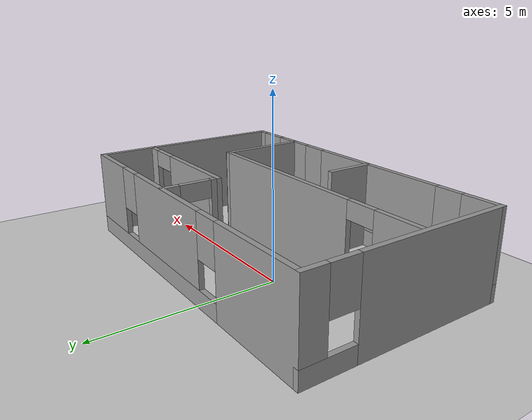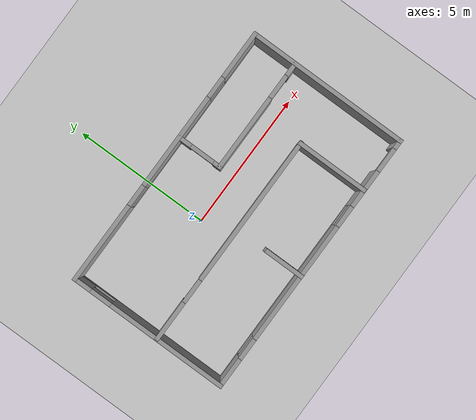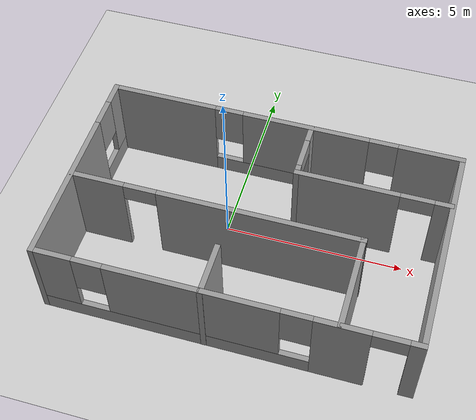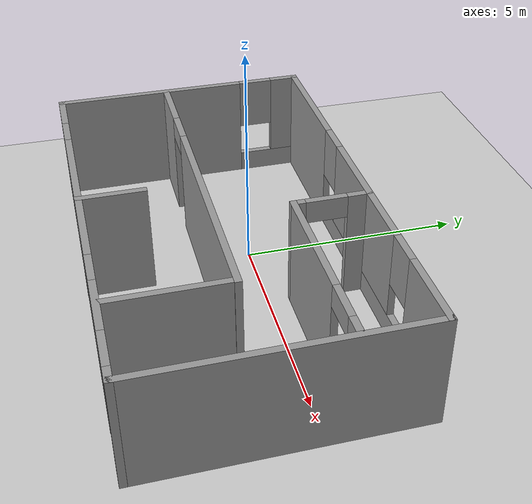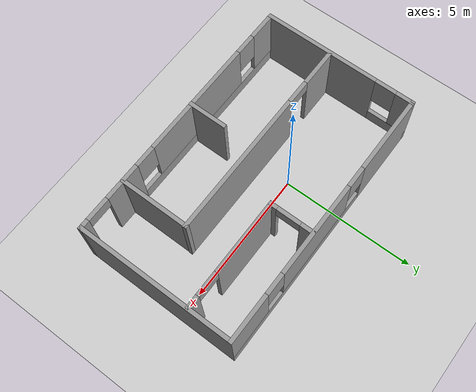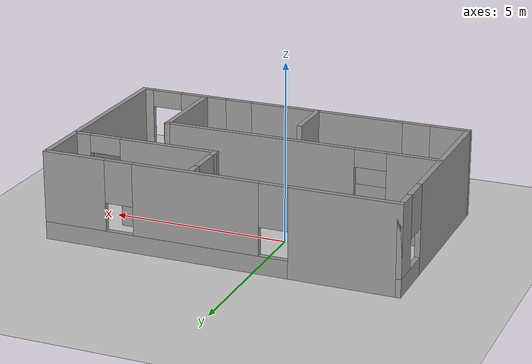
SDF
<sdf version="1.7">
 <world name="default">
  <light name="sun" type="directional">
   <pose>0 0 10 0 -0 0</pose>
   <diffuse>0.8 0.8 0.8 1</diffuse>
   <specular>0.2 0.2 0.2 1</specular>
   <attenuation>
    <range>1000</range>
    <constant>0.9</constant>
    <linear>0.01</linear>
    <quadratic>0.001</quadratic>
   </attenuation>
   <direction>-0.5 0.1 -0.9</direction>
   <spot><inner_angle>0</inner_angle><outer_angle>0</outer_angle><falloff>0</falloff></spot>
  </light>
  <model name="ground_plane">
   <static>1</static>
   <link name="link">
    <collision name="collision">
     <geometry><plane><normal>0 0 1</normal><size>100 100</size></plane></geometry>
     <surface>
      <contact><collide_bitmask>65535</collide_bitmask></contact>
      <friction><ode><mu>100</mu><mu2>50</mu2></ode></friction>
     </surface>
    </collision>
    <visual name="visual">
     <cast_shadows>0</cast_shadows>
     <geometry><plane><normal>0 0 1</normal><size>100 100</size></plane></geometry>
     <material>
      <script><uri>file://media/materials/scripts/gazebo.material</uri><name>Gazebo/Grey</name></script>
     </material>
    </visual>
   </link>
  </model>
  <gravity>0 0 -9.8</gravity>
  <magnetic_field>6e-06 2.3e-05 -4.2e-05</magnetic_field>
  <atmosphere type="adiabatic"/>
  <physics type="ode">
   <max_step_size>0.001</max_step_size>
   <real_time_factor>1</real_time_factor>
   <real_time_update_rate>1000</real_time_update_rate>
  </physics>
  <scene><ambient>0.4 0.4 0.4 1</ambient><background>0.7 0.7 0.7 1</background><shadows>1</shadows></scene>
  <audio><device>default</device></audio>
  <spherical_coordinates>
   <surface_model>EARTH_WGS84</surface_model>
   <latitude_deg>0</latitude_deg>
   <longitude_deg>0</longitude_deg>
   <elevation>0</elevation>
   <heading_deg>0</heading_deg>
  </spherical_coordinates>
  <model name="room">
   <pose>1.01499 -0.761918 0 0 -0 0</pose>
   <link name="Wall_10">
    <collision name="Wall_10_Collision">
     <geometry><box><size>2.68133 0.15 2.5</size></box></geometry>
     <pose>0 0 1.25 0 -0 0</pose>
    </collision>
    <visual name="Wall_10_Visual">
     <pose>0 0 1.25 0 -0 0</pose>
     <geometry><box><size>2.68133 0.15 2.5</size></box></geometry>
     <material>
      <script><uri>file://media/materials/scripts/gazebo.material</uri><name>Gazebo/Grey</name></script>
      <ambient>1 1 1 1</ambient>
     </material>
     <meta><layer>0</layer></meta>
    </visual>
    <pose>2.94192 -1.63607 0 0 -0 1.5708</pose>
   </link>
   <link name="Wall_11">
    <pose>-0.968497 -0.370403 0 0 -0 3.14159</pose>
    <visual name="Wall_11_Visual_0">
     <pose>-1.20839 0 1.25 0 -0 0</pose>
     <geometry><box><size>5.58323 0.15 2.5</size></box></geometry>
     <material>
      <script><uri>file://media/materials/scripts/gazebo.material</uri><name>Gazebo/Grey</name></script>
      <ambient>1 1 1 1</ambient>
     </material>
     <meta><layer>0</layer></meta>
    </visual>
    <collision name="Wall_11_Collision_0">
     <geometry><box><size>5.58323 0.15 2.5</size></box></geometry>
     <pose>-1.20839 0 1.25 0 -0 0</pose>
    </collision>
    <visual name="Wall_11_Visual_1">
     <pose>3.24161 0 1.25 0 -0 0</pose>
     <geometry><box><size>1.51677 0.15 2.5</size></box></geometry>
     <material>
      <script><uri>file://media/materials/scripts/gazebo.material</uri><name>Gazebo/Grey</name></script>
      <ambient>1 1 1 1</ambient>
     </material>
     <meta><layer>0</layer></meta>
    </visual>
    <collision name="Wall_11_Collision_1">
     <geometry><box><size>1.51677 0.15 2.5</size></box></geometry>
     <pose>3.24161 0 1.25 0 -0 0</pose>
    </collision>
    <visual name="Wall_11_Visual_2">
     <pose>2.03323 0 2.25 0 -0 0</pose>
     <geometry><box><size>0.9 0.15 0.5</size></box></geometry>
     <material>
      <script><uri>file://media/materials/scripts/gazebo.material</uri><name>Gazebo/Grey</name></script>
      <ambient>1 1 1 1</ambient>
     </material>
     <meta><layer>0</layer></meta>
    </visual>
    <collision name="Wall_11_Collision_2">
     <geometry><box><size>0.9 0.15 0.5</size></box></geometry>
     <pose>2.03323 0 2.25 0 -0 0</pose>
    </collision>
   </link>
   <link name="Wall_13">
    <pose>2.82641 1.30256 0 0 -0 3.14159</pose>
    <visual name="Wall_13_Visual_0">
     <pose>-1.87402 0 1.25 0 -0 0</pose>
     <geometry><box><size>0.501968 0.15 2.5</size></box></geometry>
     <material>
      <script><uri>file://media/materials/scripts/gazebo.material</uri><name>Gazebo/Grey</name></script>
      <ambient>1 1 1 1</ambient>
     </material>
     <meta><layer>0</layer></meta>
    </visual>
    <collision name="Wall_13_Collision_0">
     <geometry><box><size>0.501968 0.15 2.5</size></box></geometry>
     <pose>-1.87402 0 1.25 0 -0 0</pose>
    </collision>
    <visual name="Wall_13_Visual_1">
     <pose>0.700984 0 1.25 0 -0 0</pose>
     <geometry><box><size>2.84803 0.15 2.5</size></box></geometry>
     <material>
      <script><uri>file://media/materials/scripts/gazebo.material</uri><name>Gazebo/Grey</name></script>
      <ambient>1 1 1 1</ambient>
     </material>
     <meta><layer>0</layer></meta>
    </visual>
    <collision name="Wall_13_Collision_1">
     <geometry><box><size>2.84803 0.15 2.5</size></box></geometry>
     <pose>0.700984 0 1.25 0 -0 0</pose>
    </collision>
    <visual name="Wall_13_Visual_2">
     <pose>-1.17303 0 2.25 0 -0 0</pose>
     <geometry><box><size>0.9 0.15 0.5</size></box></geometry>
     <material>
      <script><uri>file://media/materials/scripts/gazebo.material</uri><name>Gazebo/Grey</name></script>
      <ambient>1 1 1 1</ambient>
     </material>
     <meta><layer>0</layer></meta>
    </visual>
    <collision name="Wall_13_Collision_2">
     <geometry><box><size>0.9 0.15 0.5</size></box></geometry>
     <pose>-1.17303 0 2.25 0 -0 0</pose>
    </collision>
   </link>
   <link name="Wall_14">
    <pose>0.776411 2.10256 0 0 -0 1.5708</pose>
    <visual name="Wall_14_Visual_0">
     <pose>-0.714292 0 1.25 0 -0 0</pose>
     <geometry><box><size>0.321416 0.15 2.5</size></box></geometry>
     <material>
      <script><uri>file://media/materials/scripts/gazebo.material</uri><name>Gazebo/Grey</name></script>
      <ambient>1 1 1 1</ambient>
     </material>
     <meta><layer>0</layer></meta>
    </visual>
    <collision name="Wall_14_Collision_0">
     <geometry><box><size>0.321416 0.15 2.5</size></box></geometry>
     <pose>-0.714292 0 1.25 0 -0 0</pose>
    </collision>
    <visual name="Wall_14_Visual_1">
     <pose>0.610708 0 1.25 0 -0 0</pose>
     <geometry><box><size>0.528584 0.15 2.5</size></box></geometry>
     <material>
      <script><uri>file://media/materials/scripts/gazebo.material</uri><name>Gazebo/Grey</name></script>
      <ambient>1 1 1 1</ambient>
     </material>
     <meta><layer>0</layer></meta>
    </visual>
    <collision name="Wall_14_Collision_1">
     <geometry><box><size>0.528584 0.15 2.5</size></box></geometry>
     <pose>0.610708 0 1.25 0 -0 0</pose>
    </collision>
    <visual name="Wall_14_Visual_2">
     <pose>-0.103584 0 2.25 0 -0 0</pose>
     <geometry><box><size>0.9 0.15 0.5</size></box></geometry>
     <material>
      <script><uri>file://media/materials/scripts/gazebo.material</uri><name>Gazebo/Grey</name></script>
      <ambient>1 1 1 1</ambient>
     </material>
     <meta><layer>0</layer></meta>
    </visual>
    <collision name="Wall_14_Collision_2">
     <geometry><box><size>0.9 0.15 0.5</size></box></geometry>
     <pose>-0.103584 0 2.25 0 -0 0</pose>
    </collision>
   </link>
   <link name="Wall_20">
    <collision name="Wall_20_Collision">
     <geometry><box><size>1.5 0.15 2.5</size></box></geometry>
     <pose>0 0 1.25 0 -0 0</pose>
    </collision>
    <visual name="Wall_20_Visual">
     <pose>0 0 1.25 0 -0 0</pose>
     <geometry><box><size>1.5 0.15 2.5</size></box></geometry>
     <material>
      <script><uri>file://media/materials/scripts/gazebo.material</uri><name>Gazebo/Grey</name></script>
      <ambient>1 1 1 1</ambient>
     </material>
     <meta><layer>0</layer></meta>
    </visual>
    <pose>-0.514365 -2.25253 0 0 -0 1.5708</pose>
   </link>
   <link name="Wall_5">
    <pose>0 2.92753 0 0 -0 0</pose>
    <visual name="Wall_5_Visual_0">
     <pose>-3.48594 0 1.25 0 -0 0</pose>
     <geometry><box><size>3.02811 0.15 2.5</size></box></geometry>
     <material>
      <script><uri>file://media/materials/scripts/gazebo.material</uri><name>Gazebo/Grey</name></script>
      <ambient>1 1 1 1</ambient>
     </material>
     <meta><layer>0</layer></meta>
    </visual>
    <collision name="Wall_5_Collision_0">
     <geometry><box><size>3.02811 0.15 2.5</size></box></geometry>
     <pose>-3.48594 0 1.25 0 -0 0</pose>
    </collision>
    <visual name="Wall_5_Visual_1">
     <pose>1.51406 0 0.25 0 -0 0</pose>
     <geometry><box><size>6.97189 0.15 0.5</size></box></geometry>
     <material>
      <script><uri>file://media/materials/scripts/gazebo.material</uri><name>Gazebo/Grey</name></script>
      <ambient>1 1 1 1</ambient>
     </material>
     <meta><layer>0</layer></meta>
    </visual>
    <collision name="Wall_5_Collision_1">
     <geometry><box><size>6.97189 0.15 0.5</size></box></geometry>
     <pose>1.51406 0 0.25 0 -0 0</pose>
    </collision>
    <visual name="Wall_5_Visual_2">
     <pose>0.607639 0 1.5 0 -0 0</pose>
     <geometry><box><size>3.55905 0.15 2</size></box></geometry>
     <material>
      <script><uri>file://media/materials/scripts/gazebo.material</uri><name>Gazebo/Grey</name></script>
      <ambient>1 1 1 1</ambient>
     </material>
     <meta><layer>0</layer></meta>
    </visual>
    <collision name="Wall_5_Collision_2">
     <geometry><box><size>3.55905 0.15 2</size></box></geometry>
     <pose>0.607639 0 1.5 0 -0 0</pose>
    </collision>
    <visual name="Wall_5_Visual_3">
     <pose>4.09358 0 1.5 0 -0 0</pose>
     <geometry><box><size>1.81284 0.15 2</size></box></geometry>
     <material>
      <script><uri>file://media/materials/scripts/gazebo.material</uri><name>Gazebo/Grey</name></script>
      <ambient>1 1 1 1</ambient>
     </material>
     <meta><layer>0</layer></meta>
    </visual>
    <collision name="Wall_5_Collision_3">
     <geometry><box><size>1.81284 0.15 2</size></box></geometry>
     <pose>4.09358 0 1.5 0 -0 0</pose>
    </collision>
    <visual name="Wall_5_Visual_4">
     <pose>-1.57189 0 1.9 0 -0 0</pose>
     <geometry><box><size>0.8 0.15 1.2</size></box></geometry>
     <material>
      <script><uri>file://media/materials/scripts/gazebo.material</uri><name>Gazebo/Grey</name></script>
      <ambient>1 1 1 1</ambient>
     </material>
     <meta><layer>0</layer></meta>
    </visual>
    <collision name="Wall_5_Collision_4">
     <geometry><box><size>0.8 0.15 1.2</size></box></geometry>
     <pose>-1.57189 0 1.9 0 -0 0</pose>
    </collision>
    <visual name="Wall_5_Visual_5">
     <pose>2.78716 0 1.9 0 -0 0</pose>
     <geometry><box><size>0.8 0.15 1.2</size></box></geometry>
     <material>
      <script><uri>file://media/materials/scripts/gazebo.material</uri><name>Gazebo/Grey</name></script>
      <ambient>1 1 1 1</ambient>
     </material>
     <meta><layer>0</layer></meta>
    </visual>
    <collision name="Wall_5_Collision_5">
     <geometry><box><size>0.8 0.15 1.2</size></box></geometry>
     <pose>2.78716 0 1.9 0 -0 0</pose>
    </collision>
   </link>
   <link name="Wall_6">
    <collision name="Wall_6_Collision">
     <geometry><box><size>6 0.15 2.5</size></box></geometry>
     <pose>0 0 1.25 0 -0 0</pose>
    </collision>
    <visual name="Wall_6_Visual">
     <pose>0 0 1.25 0 -0 0</pose>
     <geometry><box><size>6 0.15 2.5</size></box></geometry>
     <material>
      <script><uri>file://media/materials/scripts/gazebo.material</uri><name>Gazebo/Grey</name></script>
      <ambient>1 1 1 1</ambient>
     </material>
     <meta><layer>0</layer></meta>
    </visual>
    <pose>4.925 0.002526 0 0 -0 -1.5708</pose>
   </link>
   <link name="Wall_7">
    <pose>0 -2.92247 0 0 -0 3.14159</pose>
    <visual name="Wall_7_Visual_0">
     <pose>-4.8021 0 1.25 0 -0 0</pose>
     <geometry><box><size>0.395798 0.15 2.5</size></box></geometry>
     <material>
      <script><uri>file://media/materials/scripts/gazebo.material</uri><name>Gazebo/Grey</name></script>
      <ambient>1 1 1 1</ambient>
     </material>
     <meta><layer>0</layer></meta>
    </visual>
    <collision name="Wall_7_Collision_0">
     <geometry><box><size>0.395798 0.15 2.5</size></box></geometry>
     <pose>-4.8021 0 1.25 0 -0 0</pose>
    </collision>
    <visual name="Wall_7_Visual_1">
     <pose>-2.9943 0 1.25 0 -0 0</pose>
     <geometry><box><size>1.4198 0.15 2.5</size></box></geometry>
     <material>
      <script><uri>file://media/materials/scripts/gazebo.material</uri><name>Gazebo/Grey</name></script>
      <ambient>1 1 1 1</ambient>
     </material>
     <meta><layer>0</layer></meta>
    </visual>
    <collision name="Wall_7_Collision_1">
     <geometry><box><size>1.4198 0.15 2.5</size></box></geometry>
     <pose>-2.9943 0 1.25 0 -0 0</pose>
    </collision>
    <visual name="Wall_7_Visual_2">
     <pose>1.3578 0 0.25 0 -0 0</pose>
     <geometry><box><size>7.2844 0.15 0.5</size></box></geometry>
     <material>
      <script><uri>file://media/materials/scripts/gazebo.material</uri><name>Gazebo/Grey</name></script>
      <ambient>1 1 1 1</ambient>
     </material>
     <meta><layer>0</layer></meta>
    </visual>
    <collision name="Wall_7_Collision_2">
     <geometry><box><size>7.2844 0.15 0.5</size></box></geometry>
     <pose>1.3578 0 0.25 0 -0 0</pose>
    </collision>
    <visual name="Wall_7_Visual_3">
     <pose>0.785193 0 1.5 0 -0 0</pose>
     <geometry><box><size>4.53919 0.15 2</size></box></geometry>
     <material>
      <script><uri>file://media/materials/scripts/gazebo.material</uri><name>Gazebo/Grey</name></script>
      <ambient>1 1 1 1</ambient>
     </material>
     <meta><layer>0</layer></meta>
    </visual>
    <collision name="Wall_7_Collision_3">
     <geometry><box><size>4.53919 0.15 2</size></box></geometry>
     <pose>0.785193 0 1.5 0 -0 0</pose>
    </collision>
    <visual name="Wall_7_Visual_4">
     <pose>4.42739 0 1.5 0 -0 0</pose>
     <geometry><box><size>1.14521 0.15 2</size></box></geometry>
     <material>
      <script><uri>file://media/materials/scripts/gazebo.material</uri><name>Gazebo/Grey</name></script>
      <ambient>1 1 1 1</ambient>
     </material>
     <meta><layer>0</layer></meta>
    </visual>
    <collision name="Wall_7_Collision_4">
     <geometry><box><size>1.14521 0.15 2</size></box></geometry>
     <pose>4.42739 0 1.5 0 -0 0</pose>
    </collision>
    <visual name="Wall_7_Visual_5">
     <pose>-1.8844 0 1.9 0 -0 0</pose>
     <geometry><box><size>0.8 0.15 1.2</size></box></geometry>
     <material>
      <script><uri>file://media/materials/scripts/gazebo.material</uri><name>Gazebo/Grey</name></script>
      <ambient>1 1 1 1</ambient>
     </material>
     <meta><layer>0</layer></meta>
    </visual>
    <collision name="Wall_7_Collision_5">
     <geometry><box><size>0.8 0.15 1.2</size></box></geometry>
     <pose>-1.8844 0 1.9 0 -0 0</pose>
    </collision>
    <visual name="Wall_7_Visual_6">
     <pose>3.45479 0 1.9 0 -0 0</pose>
     <geometry><box><size>0.8 0.15 1.2</size></box></geometry>
     <material>
      <script><uri>file://media/materials/scripts/gazebo.material</uri><name>Gazebo/Grey</name></script>
      <ambient>1 1 1 1</ambient>
     </material>
     <meta><layer>0</layer></meta>
    </visual>
    <collision name="Wall_7_Collision_6">
     <geometry><box><size>0.8 0.15 1.2</size></box></geometry>
     <pose>3.45479 0 1.9 0 -0 0</pose>
    </collision>
    <visual name="Wall_7_Visual_7">
     <pose>-4.1542 0 2.25 0 -0 0</pose>
     <geometry><box><size>0.9 0.15 0.5</size></box></geometry>
     <material>
      <script><uri>file://media/materials/scripts/gazebo.material</uri><name>Gazebo/Grey</name></script>
      <ambient>1 1 1 1</ambient>
     </material>
     <meta><layer>0</layer></meta>
    </visual>
    <collision name="Wall_7_Collision_7">
     <geometry><box><size>0.9 0.15 0.5</size></box></geometry>
     <pose>-4.1542 0 2.25 0 -0 0</pose>
    </collision>
   </link>
   <link name="Wall_8">
    <pose>-4.925 0.002526 0 0 -0 1.5708</pose>
    <visual name="Wall_8_Visual_0">
     <pose>-0.753364 0 1.25 0 -0 0</pose>
     <geometry><box><size>4.49327 0.15 2.5</size></box></geometry>
     <material>
      <script><uri>file://media/materials/scripts/gazebo.material</uri><name>Gazebo/Grey</name></script>
      <ambient>1 1 1 1</ambient>
     </material>
     <meta><layer>0</layer></meta>
    </visual>
    <collision name="Wall_8_Collision_0">
     <geometry><box><size>4.49327 0.15 2.5</size></box></geometry>
     <pose>-0.753364 0 1.25 0 -0 0</pose>
    </collision>
    <visual name="Wall_8_Visual_1">
     <pose>2.24664 0 0.25 0 -0 0</pose>
     <geometry><box><size>1.50673 0.15 0.5</size></box></geometry>
     <material>
      <script><uri>file://media/materials/scripts/gazebo.material</uri><name>Gazebo/Grey</name></script>
      <ambient>1 1 1 1</ambient>
     </material>
     <meta><layer>0</layer></meta>
    </visual>
    <collision name="Wall_8_Collision_1">
     <geometry><box><size>1.50673 0.15 0.5</size></box></geometry>
     <pose>2.24664 0 0.25 0 -0 0</pose>
    </collision>
    <visual name="Wall_8_Visual_2">
     <pose>2.64664 0 1.5 0 -0 0</pose>
     <geometry><box><size>0.706727 0.15 2</size></box></geometry>
     <material>
      <script><uri>file://media/materials/scripts/gazebo.material</uri><name>Gazebo/Grey</name></script>
      <ambient>1 1 1 1</ambient>
     </material>
     <meta><layer>0</layer></meta>
    </visual>
    <collision name="Wall_8_Collision_2">
     <geometry><box><size>0.706727 0.15 2</size></box></geometry>
     <pose>2.64664 0 1.5 0 -0 0</pose>
    </collision>
    <visual name="Wall_8_Visual_3">
     <pose>1.89327 0 1.9 0 -0 0</pose>
     <geometry><box><size>0.8 0.15 1.2</size></box></geometry>
     <material>
      <script><uri>file://media/materials/scripts/gazebo.material</uri><name>Gazebo/Grey</name></script>
      <ambient>1 1 1 1</ambient>
     </material>
     <meta><layer>0</layer></meta>
    </visual>
    <collision name="Wall_8_Collision_3">
     <geometry><box><size>0.8 0.15 1.2</size></box></geometry>
     <pose>1.89327 0 1.9 0 -0 0</pose>
    </collision>
   </link>
   <static>1</static>
  </model>
 </world>
</sdf>
